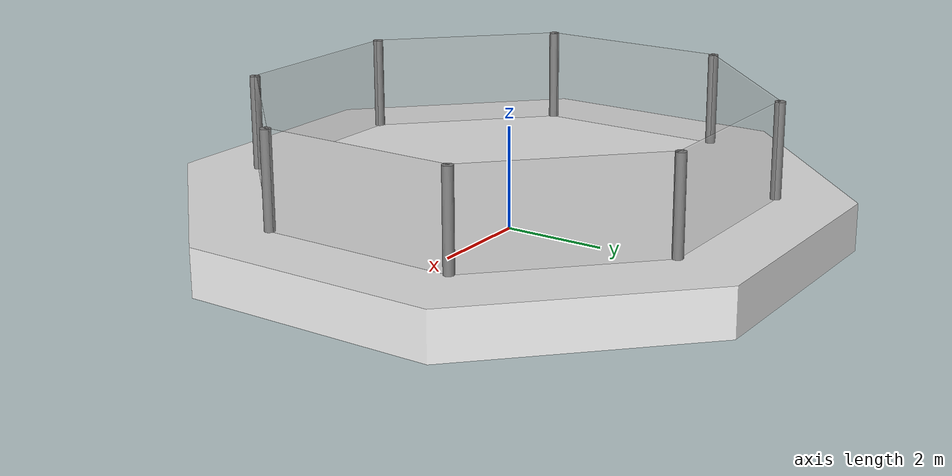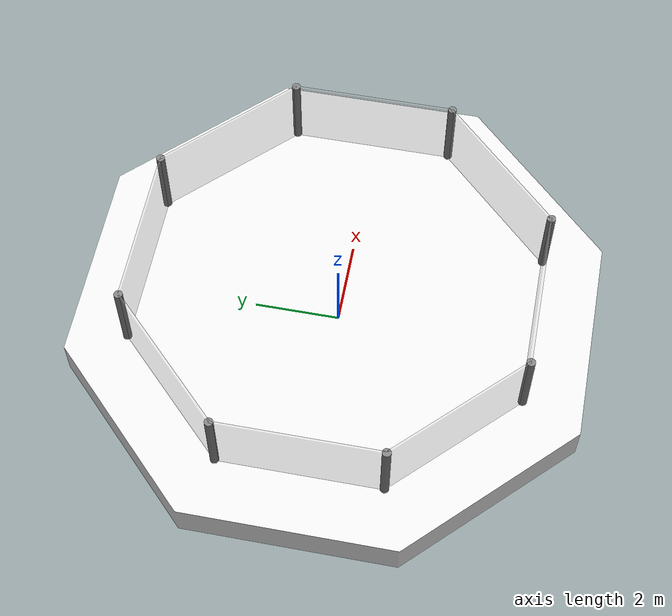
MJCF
<mujoco model="mma_octagon">
  <compiler angle="degree" autolimits="true"/>
  <option timestep="0.002083" gravity="0 0 -9.81" iterations="50" solver="Newton"/>

  <default>
    <geom contype="1" conaffinity="1" condim="3"/>
  </default>

  <asset>
    <mesh name="octagon_platform"
      vertex="
         5.941  2.461 0.91    2.461  5.941 0.91   -2.461  5.941 0.91   -5.941  2.461 0.91
        -5.941 -2.461 0.91   -2.461 -5.941 0.91    2.461 -5.941 0.91    5.941 -2.461 0.91
         5.941  2.461 0.00    2.461  5.941 0.00   -2.461  5.941 0.00   -5.941  2.461 0.00
        -5.941 -2.461 0.00   -2.461 -5.941 0.00    2.461 -5.941 0.00    5.941 -2.461 0.00"
      face="
        0 1 2   0 2 3   0 3 4   0 4 5   0 5 6   0 6 7
        8 10 9  8 11 10  8 12 11  8 13 12  8 14 13  8 15 14
        8 9 1   8 1 0   9 10 2  9 2 1   10 11 3  10 3 2
        11 12 4  11 4 3  12 13 5  12 5 4  13 14 6  13 6 5
        14 15 7  14 7 6  15 8 0  15 0 7"/>
  </asset>

  <worldbody>

    <!-- ── Canvas / platform ────────────────────────────────────────────────── -->
    <!-- True octagonal prism. Top face at Z=0.91 m (3 ft platform).
         Apron extends ~4.5 ft beyond cage walls. Solid from Z=0 to Z=0.91. -->
    <geom name="canvas"
          type="mesh" mesh="octagon_platform"
          friction="0.9 0.005 0.0001" rgba="0.9 0.9 0.9 1"
          contype="1" conaffinity="1"/>

    <geom name="wall_N"
          type="box" size="1.895 0.025 0.915" pos="0 4.57 1.825" euler="0 0 0"
          friction="1.2 0.005 0.0001" solref="0.02 1" solimp="0.9 0.95 0.001"
          rgba="0.7 0.7 0.7 0.25" contype="1" conaffinity="1"/>

    <geom name="wall_NE"
          type="box" size="1.895 0.025 0.915" pos="3.23 3.23 1.825" euler="0 0 -45"
          friction="1.2 0.005 0.0001" solref="0.02 1" solimp="0.9 0.95 0.001"
          rgba="0.7 0.7 0.7 0.25" contype="1" conaffinity="1"/>

    <geom name="wall_E"
          type="box" size="1.895 0.025 0.915" pos="4.57 0 1.825" euler="0 0 -90"
          friction="1.2 0.005 0.0001" solref="0.02 1" solimp="0.9 0.95 0.001"
          rgba="0.7 0.7 0.7 0.25" contype="1" conaffinity="1"/>

    <geom name="wall_SE"
          type="box" size="1.895 0.025 0.915" pos="3.23 -3.23 1.825" euler="0 0 -135"
          friction="1.2 0.005 0.0001" solref="0.02 1" solimp="0.9 0.95 0.001"
          rgba="0.7 0.7 0.7 0.25" contype="1" conaffinity="1"/>

    <geom name="wall_S"
          type="box" size="1.895 0.025 0.915" pos="0 -4.57 1.825" euler="0 0 180"
          friction="1.2 0.005 0.0001" solref="0.02 1" solimp="0.9 0.95 0.001"
          rgba="0.7 0.7 0.7 0.25" contype="1" conaffinity="1"/>

    <geom name="wall_SW"
          type="box" size="1.895 0.025 0.915" pos="-3.23 -3.23 1.825" euler="0 0 135"
          friction="1.2 0.005 0.0001" solref="0.02 1" solimp="0.9 0.95 0.001"
          rgba="0.7 0.7 0.7 0.25" contype="1" conaffinity="1"/>

    <geom name="wall_W"
          type="box" size="1.895 0.025 0.915" pos="-4.57 0 1.825" euler="0 0 90"
          friction="1.2 0.005 0.0001" solref="0.02 1" solimp="0.9 0.95 0.001"
          rgba="0.7 0.7 0.7 0.25" contype="1" conaffinity="1"/>

    <geom name="wall_NW"
          type="box" size="1.895 0.025 0.915" pos="-3.23 3.23 1.825" euler="0 0 45"
          friction="1.2 0.005 0.0001" solref="0.02 1" solimp="0.9 0.95 0.001"
          rgba="0.7 0.7 0.7 0.25" contype="1" conaffinity="1"/>

    <geom name="post_N_NE"
          type="cylinder" size="0.10 0.915" pos="1.894 4.573 1.825"
          friction="1.2 0.005 0.0001" contype="1" conaffinity="1"/>

    <geom name="post_NE_E"
          type="cylinder" size="0.10 0.915" pos="4.573 1.894 1.825"
          friction="1.2 0.005 0.0001" contype="1" conaffinity="1"/>

    <geom name="post_E_SE"
          type="cylinder" size="0.10 0.915" pos="4.573 -1.894 1.825"
          friction="1.2 0.005 0.0001" contype="1" conaffinity="1"/>

    <geom name="post_SE_S"
          type="cylinder" size="0.10 0.915" pos="1.894 -4.573 1.825"
          friction="1.2 0.005 0.0001" contype="1" conaffinity="1"/>

    <geom name="post_S_SW"
          type="cylinder" size="0.10 0.915" pos="-1.894 -4.573 1.825"
          friction="1.2 0.005 0.0001" contype="1" conaffinity="1"/>

    <geom name="post_SW_W"
          type="cylinder" size="0.10 0.915" pos="-4.573 -1.894 1.825"
          friction="1.2 0.005 0.0001" contype="1" conaffinity="1"/>

    <geom name="post_W_NW"
          type="cylinder" size="0.10 0.915" pos="-4.573 1.894 1.825"
          friction="1.2 0.005 0.0001" contype="1" conaffinity="1"/>

    <geom name="post_NW_N"
          type="cylinder" size="0.10 0.915" pos="-1.894 4.573 1.825"
          friction="1.2 0.005 0.0001" contype="1" conaffinity="1"/>

    <site name="wall_N_pin"  pos="0 4.545 1.825"          size="0.05" group="3"/>
    <site name="wall_NE_pin" pos="3.216 3.216 1.825"      size="0.05" group="3"/>
    <site name="wall_E_pin"  pos="4.545 0 1.825"          size="0.05" group="3"/>
    <site name="wall_SE_pin" pos="3.216 -3.216 1.825"     size="0.05" group="3"/>
    <site name="wall_S_pin"  pos="0 -4.545 1.825"         size="0.05" group="3"/>
    <site name="wall_SW_pin" pos="-3.216 -3.216 1.825"    size="0.05" group="3"/>
    <site name="wall_W_pin"  pos="-4.545 0 1.825"         size="0.05" group="3"/>
    <site name="wall_NW_pin" pos="-3.216 3.216 1.825"     size="0.05" group="3"/>

  </worldbody>
</mujoco>
